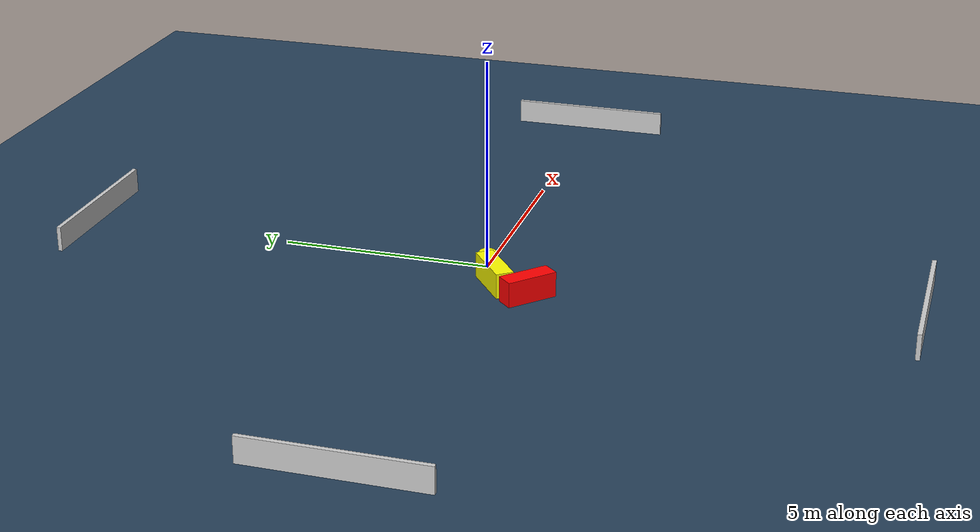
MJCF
<?xml version="1.0" ?>
<mujoco model="generated_environment">
  <option timestep="0.01" integrator="RK4" cone="elliptic"/>
  <default>
    <geom density="1"/>
  </default>
  <asset>
    <texture builtin="gradient" height="3072" name="skybox" rgb1="0.3 0.5 0.7" rgb2="0 0 0" type="skybox" width="512"/>
    <texture builtin="checker" height="300" name="groundplane" rgb1="0.2 0.3 0.4" rgb2="0.1 0.2 0.3" type="2d" width="300"/>
    <material name="groundplane" reflectance="0.2" texrepeat="5 5" texture="groundplane"/>
  </asset>
  <worldbody>
    <light dir="0 0 -1" directional="true" pos="0 0 1.5"/>
    <geom condim="3" friction="0.5 0.005 0.001" material="groundplane" name="floor" pos="0 0 0" size="0 0 0.05" type="plane"/>
    <body name="walls">
      <geom name="wall_1" condim="4" pos="-10.0 0.0 0.3" rgba="0.800000011920929 0.800000011920929 0.800000011920929 1.0" size="0.05 2.0 0.3" type="box"/>
      <geom name="wall_2" condim="4" pos="10.0 0.0 0.3" rgba="0.800000011920929 0.800000011920929 0.800000011920929 1.0" size="0.05 2.0 0.3" type="box"/>
      <geom name="wall_3" condim="4" pos="0.0 -10.0 0.3" rgba="0.800000011920929 0.800000011920929 0.800000011920929 1.0" size="2.0 0.05 0.3" type="box"/>
      <geom name="wall_4" condim="4" pos="0.0 10.0 0.3" rgba="0.800000011920929 0.800000011920929 0.800000011920929 1.0" size="2.0 0.05 0.3" type="box"/>
    </body>
    <body name="robot">
      <joint name="joint_x" type="slide" pos="0 0 0" axis="1 0 0"/>
      <joint name="joint_y" type="slide" pos="0 0 0" axis="0 1 0"/>
      <geom name="robot" type="cylinder" pos="0.0 0.0 0.2" size="0.2 0.2 0.0" mass="5.0" friction="1.0 0.005 0.0001" condim="4" rgba="1.0 1.0 0.0 1.0"/>
    </body>
    <body name="obstacle_1_movable">
      <geom name="obstacle_1_movable" condim="4" pos="-0.9698890410750766 -0.4503690209812359 0.3" euler="0 0 307.2318844802613" friction="0.0 0.005 0.001" rgba="1.0 1.0 0.0 1.0" size="0.21153434314931946 0.6622668353834837 0.3" type="box" mass="0.1"/>
      <joint type="free"/>
    </body>
    <body name="obstacle_2_static">
      <geom name="obstacle_2_static" condim="4" pos="-1.4014239624410065 -1.3530731983545525 0.3" euler="0 0 316.77369891962957" friction="0.0 0.005 0.001" rgba="1.0 0.0 0.0 1.0" size="0.6135799383053984 0.21771716068910352 0.3" type="box"/>
    </body>
  </worldbody>
  <actuator>
    <motor name="actuator_x" joint="joint_x" gear="1" ctrlrange="-1 1"/>
    <motor name="actuator_y" joint="joint_y" gear="1" ctrlrange="-1 1"/>
  </actuator>
</mujoco>
